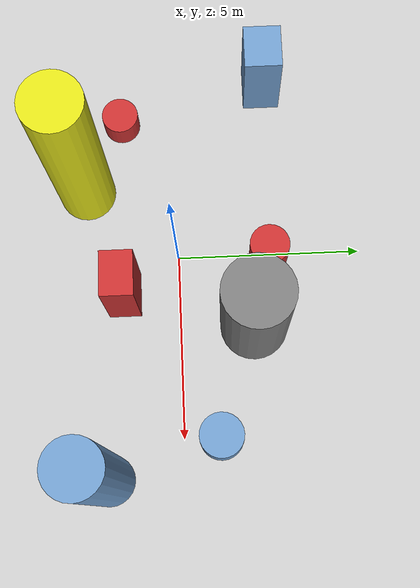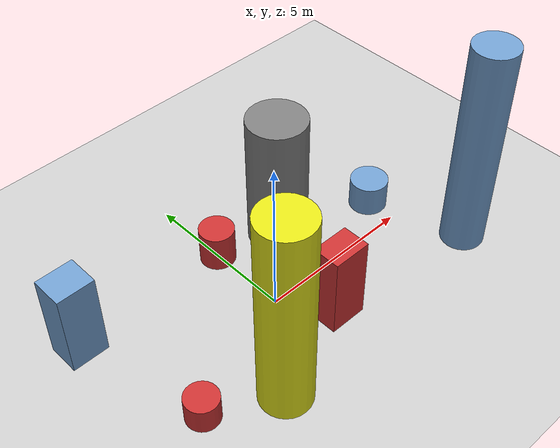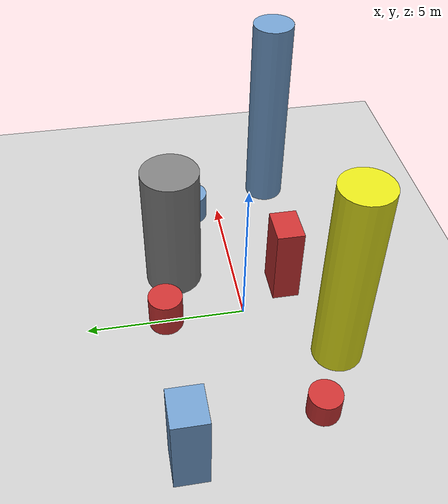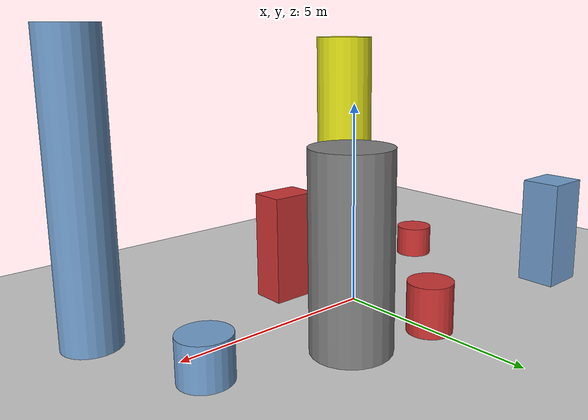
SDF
<?xml version='1.0'?>
<sdf version='1.6'>
  <world name='routeA_rl_v1__support_expansion__rl_train__mixed_3d_low_density_route__000123'>
    <!-- Sun light -->
    <light name='sun' type='directional'>
      <cast_shadows>1</cast_shadows>
      <pose>0 0 10 0 0 0</pose>
      <diffuse>0.8 0.8 0.8 1</diffuse>
      <specular>0.2 0.2 0.2 1</specular>
      <attenuation>
        <range>1000</range>
        <constant>0.9</constant>
        <linear>0.01</linear>
        <quadratic>0.001</quadratic>
      </attenuation>
      <direction>-0.5 0.1 -0.9</direction>
    </light>

    <!-- Ground plane -->
    <model name='ground_plane'>
      <static>1</static>
      <link name='link'>
        <collision name='collision'>
          <geometry>
            <plane>
              <normal>0 0 1</normal>
              <size>100 100</size>
            </plane>
          </geometry>
          <surface>
            <contact>
              <collide_bitmask>65535</collide_bitmask>
              <ode/>
            </contact>
            <friction>
              <ode>
                <mu>100</mu>
                <mu2>50</mu2>
              </ode>
              <torsional><ode/></torsional>
            </friction>
            <bounce/>
          </surface>
          <max_contacts>10</max_contacts>
        </collision>
        <visual name='visual'>
          <cast_shadows>0</cast_shadows>
          <geometry>
            <plane>
              <normal>0 0 1</normal>
              <size>100 100</size>
            </plane>
          </geometry>
          <material>
            <script>
              <uri>file://media/materials/scripts/gazebo.material</uri>
              <n>Gazebo/Grey</n>
            </script>
          </material>
        </visual>
      </link>
    </model>

    <!-- Environment -->
    <magnetic_field>6e-06 2.3e-05 -4.2e-05</magnetic_field>
    <atmosphere type='adiabatic'/>
    <physics name='default_physics' default='0' type='ode'>
      <gravity>0 0 -9.8</gravity>
      <max_step_size>0.004</max_step_size>
      <real_time_factor>1</real_time_factor>
      <real_time_update_rate>250</real_time_update_rate>
    </physics>
    <scene>
      <ambient>0.4 0.4 0.4 1</ambient>
      <background>0.7 0.7 0.7 1</background>
      <shadows>1</shadows>
    </scene>
    <wind/>
    <spherical_coordinates>
      <surface_model>EARTH_WGS84</surface_model>
      <latitude_deg>0</latitude_deg>
      <longitude_deg>0</longitude_deg>
      <elevation>0</elevation>
      <heading_deg>0</heading_deg>
    </spherical_coordinates>

    <!-- ============ OBSTACLES (8) ============ -->
    <model name='low_obs_0'>
      <static>1</static>
      <link name='link'>
        <visual name='visual'>
          <geometry>
            <cylinder>
              <radius>0.4992</radius>
              <length>0.8381</length>
            </cylinder>
          </geometry>
          <material>
            <script>
              <n>Gazebo/Red</n>
              <uri>file://media/materials/scripts/gazebo.material</uri>
            </script>
            <ambient>0.8 0.2 0.2 1</ambient>
          </material>
        </visual>
        <collision name='collision'>
          <geometry>
            <cylinder>
              <radius>0.4992</radius>
              <length>0.8381</length>
            </cylinder>
          </geometry>
          <max_contacts>10</max_contacts>
          <surface>
            <contact><ode/></contact>
            <bounce/>
            <friction>
              <ode><mu>1</mu><mu2>1</mu2></ode>
              <torsional><ode/></torsional>
            </friction>
          </surface>
        </collision>
      </link>
      <pose>-4.0000 -1.5000 0.4191 0 0 0.0000</pose>
    </model>

    <model name='low_obs_1'>
      <static>1</static>
      <link name='link'>
        <visual name='visual'>
          <geometry>
            <cylinder>
              <radius>0.5411</radius>
              <length>1.1879</length>
            </cylinder>
          </geometry>
          <material>
            <script>
              <n>Gazebo/Red</n>
              <uri>file://media/materials/scripts/gazebo.material</uri>
            </script>
            <ambient>0.8 0.2 0.2 1</ambient>
          </material>
        </visual>
        <collision name='collision'>
          <geometry>
            <cylinder>
              <radius>0.5411</radius>
              <length>1.1879</length>
            </cylinder>
          </geometry>
          <max_contacts>10</max_contacts>
          <surface>
            <contact><ode/></contact>
            <bounce/>
            <friction>
              <ode><mu>1</mu><mu2>1</mu2></ode>
              <torsional><ode/></torsional>
            </friction>
          </surface>
        </collision>
      </link>
      <pose>0.0000 2.5000 0.5939 0 0 0.0000</pose>
    </model>

    <model name='low_obs_2'>
      <static>1</static>
      <link name='link'>
        <visual name='visual'>
          <geometry>
            <cylinder>
              <radius>0.5949</radius>
              <length>0.9977</length>
            </cylinder>
          </geometry>
          <material>
            <script>
              <n>Gazebo/Blue</n>
              <uri>file://media/materials/scripts/gazebo.material</uri>
            </script>
            <ambient>0.447 0.624 0.812 1</ambient>
          </material>
        </visual>
        <collision name='collision'>
          <geometry>
            <cylinder>
              <radius>0.5949</radius>
              <length>0.9977</length>
            </cylinder>
          </geometry>
          <max_contacts>10</max_contacts>
          <surface>
            <contact><ode/></contact>
            <bounce/>
            <friction>
              <ode><mu>1</mu><mu2>1</mu2></ode>
              <torsional><ode/></torsional>
            </friction>
          </surface>
        </collision>
      </link>
      <pose>5.0000 1.0000 0.4989 0 0 0.0000</pose>
    </model>

    <model name='tall_obs_0'>
      <static>1</static>
      <link name='link'>
        <visual name='visual'>
          <geometry>
            <cylinder>
              <radius>0.7744</radius>
              <length>6.5321</length>
            </cylinder>
          </geometry>
          <material>
            <script>
              <n>Gazebo/Yellow</n>
              <uri>file://media/materials/scripts/gazebo.material</uri>
            </script>
            <ambient>0.9 0.9 0.1 1</ambient>
          </material>
        </visual>
        <collision name='collision'>
          <geometry>
            <cylinder>
              <radius>0.7744</radius>
              <length>6.5321</length>
            </cylinder>
          </geometry>
          <max_contacts>10</max_contacts>
          <surface>
            <contact><ode/></contact>
            <bounce/>
            <friction>
              <ode><mu>1</mu><mu2>1</mu2></ode>
              <torsional><ode/></torsional>
            </friction>
          </surface>
        </collision>
      </link>
      <pose>-2.0000 -2.5000 3.2660 0 0 0.0000</pose>
    </model>

    <model name='tall_obs_1'>
      <static>1</static>
      <link name='link'>
        <visual name='visual'>
          <geometry>
            <cylinder>
              <radius>0.9181</radius>
              <length>4.4365</length>
            </cylinder>
          </geometry>
          <material>
            <script>
              <n>Gazebo/Grey</n>
              <uri>file://media/materials/scripts/gazebo.material</uri>
            </script>
            <ambient>0.5 0.5 0.5 1</ambient>
          </material>
        </visual>
        <collision name='collision'>
          <geometry>
            <cylinder>
              <radius>0.9181</radius>
              <length>4.4365</length>
            </cylinder>
          </geometry>
          <max_contacts>10</max_contacts>
          <surface>
            <contact><ode/></contact>
            <bounce/>
            <friction>
              <ode><mu>1</mu><mu2>1</mu2></ode>
              <torsional><ode/></torsional>
            </friction>
          </surface>
        </collision>
      </link>
      <pose>2.0000 2.0000 2.2183 0 0 0.0000</pose>
    </model>

    <model name='tall_obs_2'>
      <static>1</static>
      <link name='link'>
        <visual name='visual'>
          <geometry>
            <cylinder>
              <radius>0.6753</radius>
              <length>6.9035</length>
            </cylinder>
          </geometry>
          <material>
            <script>
              <n>Gazebo/Blue</n>
              <uri>file://media/materials/scripts/gazebo.material</uri>
            </script>
            <ambient>0.447 0.624 0.812 1</ambient>
          </material>
        </visual>
        <collision name='collision'>
          <geometry>
            <cylinder>
              <radius>0.6753</radius>
              <length>6.9035</length>
            </cylinder>
          </geometry>
          <max_contacts>10</max_contacts>
          <surface>
            <contact><ode/></contact>
            <bounce/>
            <friction>
              <ode><mu>1</mu><mu2>1</mu2></ode>
              <torsional><ode/></torsional>
            </friction>
          </surface>
        </collision>
      </link>
      <pose>6.0000 -2.0000 3.4518 0 0 0.0000</pose>
    </model>

    <model name='med_obs_0'>
      <static>1</static>
      <link name='link'>
        <visual name='visual'>
          <geometry>
            <box>
              <size>1.1535 1.0029 2.7691</size>
            </box>
          </geometry>
          <material>
            <script>
              <n>Gazebo/Blue</n>
              <uri>file://media/materials/scripts/gazebo.material</uri>
            </script>
            <ambient>0.447 0.624 0.812 1</ambient>
          </material>
        </visual>
        <collision name='collision'>
          <geometry>
            <box>
              <size>1.1535 1.0029 2.7691</size>
            </box>
          </geometry>
          <max_contacts>10</max_contacts>
          <surface>
            <contact><ode/></contact>
            <bounce/>
            <friction>
              <ode><mu>1</mu><mu2>1</mu2></ode>
              <torsional><ode/></torsional>
            </friction>
          </surface>
        </collision>
      </link>
      <pose>-5.0000 2.5000 1.3845 0 0 0.0000</pose>
    </model>

    <model name='med_obs_1'>
      <static>1</static>
      <link name='link'>
        <visual name='visual'>
          <geometry>
            <box>
              <size>1.1837 0.8676 2.6932</size>
            </box>
          </geometry>
          <material>
            <script>
              <n>Gazebo/Red</n>
              <uri>file://media/materials/scripts/gazebo.material</uri>
            </script>
            <ambient>0.8 0.2 0.2 1</ambient>
          </material>
        </visual>
        <collision name='collision'>
          <geometry>
            <box>
              <size>1.1837 0.8676 2.6932</size>
            </box>
          </geometry>
          <max_contacts>10</max_contacts>
          <surface>
            <contact><ode/></contact>
            <bounce/>
            <friction>
              <ode><mu>1</mu><mu2>1</mu2></ode>
              <torsional><ode/></torsional>
            </friction>
          </surface>
        </collision>
      </link>
      <pose>1.0000 -1.5000 1.3466 0 0 0.0000</pose>
    </model>

    <!-- GUI camera -->
    <gui fullscreen='0'>
      <camera name='user_camera'>
        <pose>-15 0 18 0 0.85 0.15</pose>
        <view_controller>orbit</view_controller>
        <projection_type>perspective</projection_type>
      </camera>
    </gui>
  </world>
</sdf>
